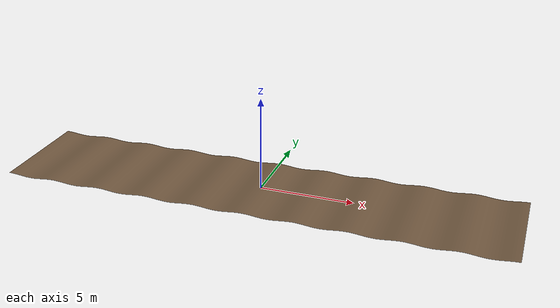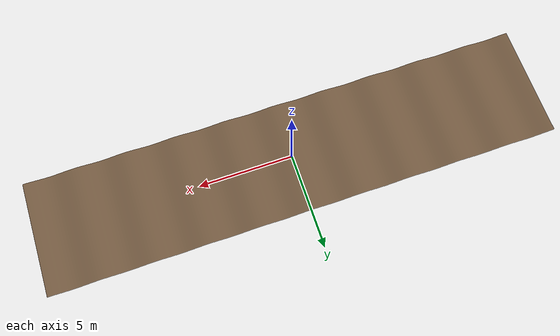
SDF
<?xml version="1.0"?>
<sdf version="1.8">
  <world name="waves">

    <!-- Waves along the driving direction, to test the suspension and body pitch.
         Made by agri_ugv_terrain; the robot starts level on a zero crossing at x = 0. -->

    <!-- Physics: 1 ms time steps, running at real-time speed -->
    <physics name="1ms" type="ignored">
      <max_step_size>0.001</max_step_size>
      <real_time_factor>1.0</real_time_factor>
    </physics>

    <!-- Core systems: physics, accepting commands (e.g. spawning), sending the scene to the GUI -->
    <plugin filename="ignition-gazebo-physics-system"
            name="ignition::gazebo::systems::Physics"/>
    <plugin filename="ignition-gazebo-user-commands-system"
            name="ignition::gazebo::systems::UserCommands"/>
    <plugin filename="ignition-gazebo-scene-broadcaster-system"
            name="ignition::gazebo::systems::SceneBroadcaster"/>

    <light type="directional" name="sun">
      <cast_shadows>true</cast_shadows>
      <pose>0 0 10 0 0 0</pose>
      <diffuse>0.8 0.8 0.8 1</diffuse>
      <specular>0.2 0.2 0.2 1</specular>
      <direction>-0.5 0.1 -0.9</direction>
    </light>

    <!-- Ground: 27 x 6 m waves along x, +-5 cm every 2.7 m (twice the wheelbase) -->
    <include>
      <uri>model://waves</uri>
    </include>

  </world>
</sdf>

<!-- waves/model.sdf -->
<sdf version="1.9">
  <model name="waves">
    <static>true</static>
    <link name="link">
      <collision name="collision">
        <geometry>
          <mesh><uri>meshes/waves.obj</uri></mesh>
        </geometry>
      </collision>
      <visual name="visual">
        <geometry>
          <mesh><uri>meshes/waves.obj</uri></mesh>
        </geometry>
        <material>
          <ambient>0.45 0.35 0.25 1</ambient>
          <diffuse>0.45 0.35 0.25 1</diffuse>
        </material>
      </visual>
    </link>
  </model>
</sdf>
